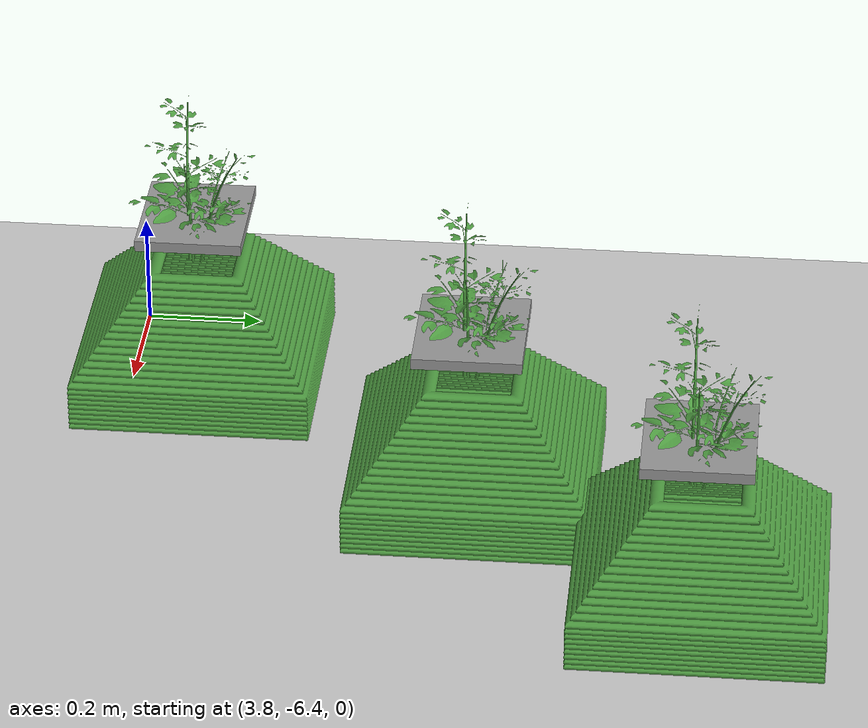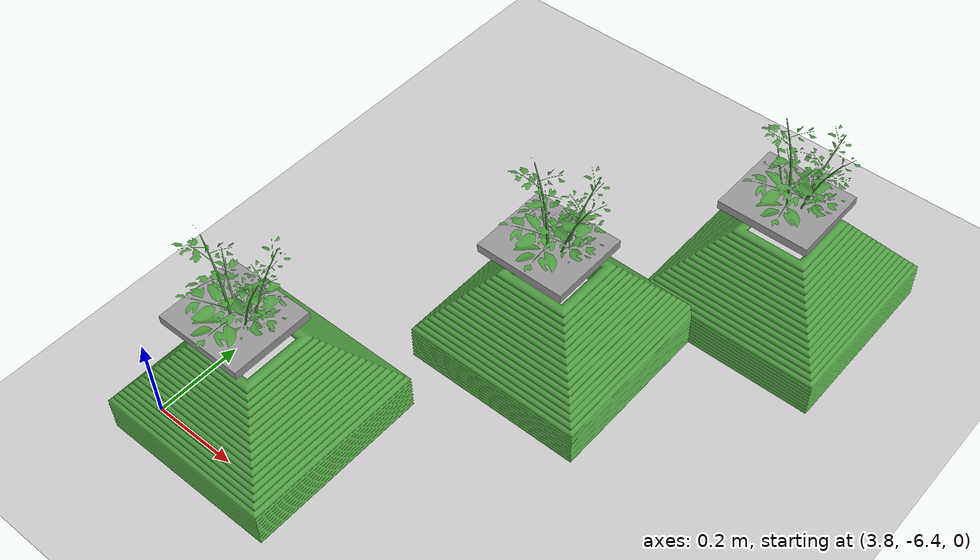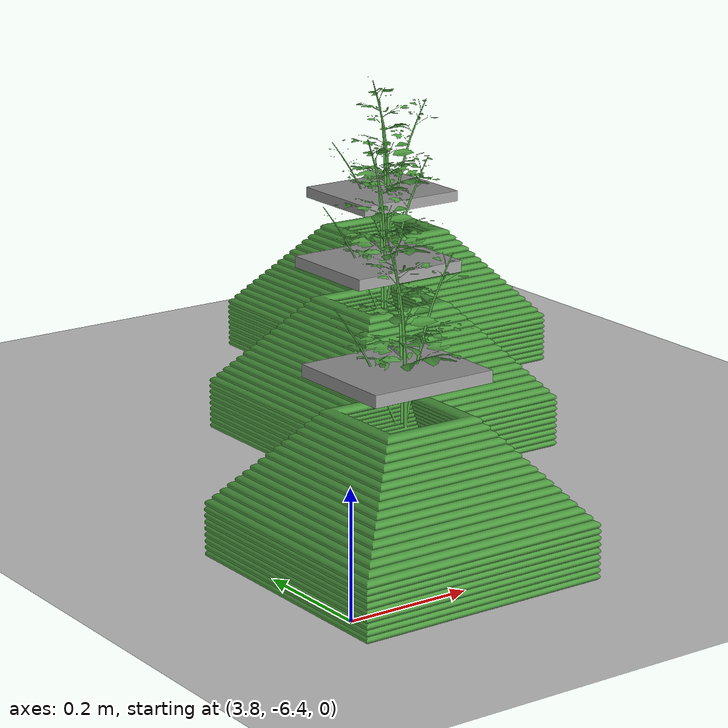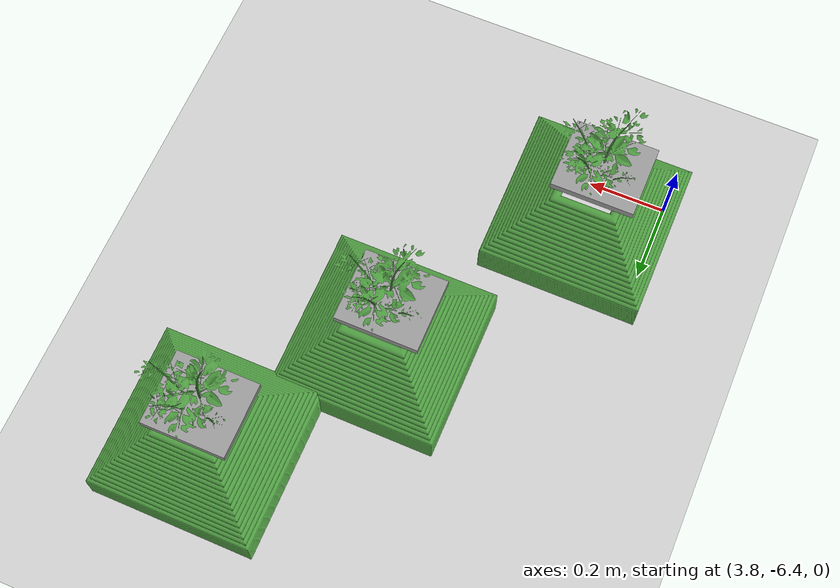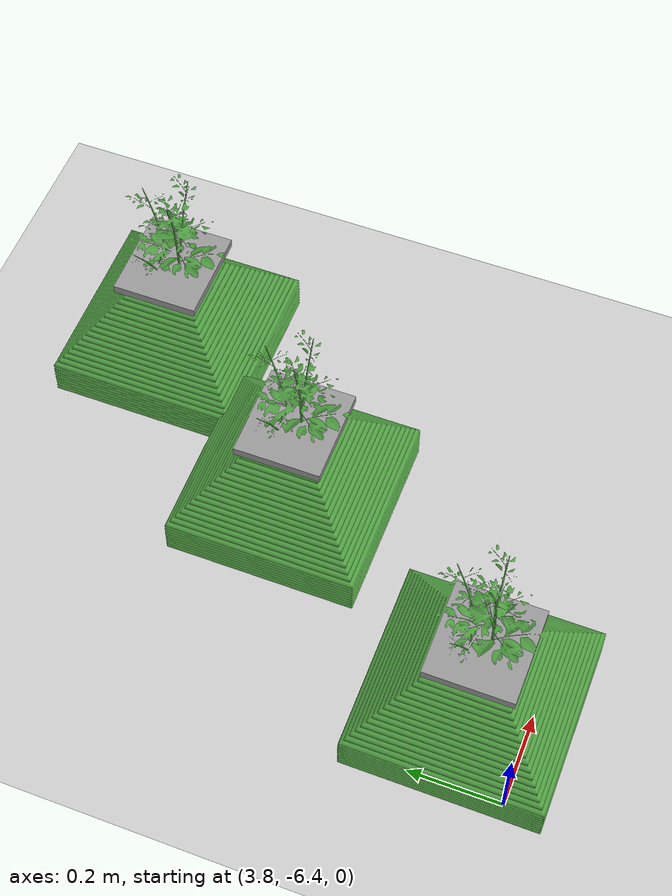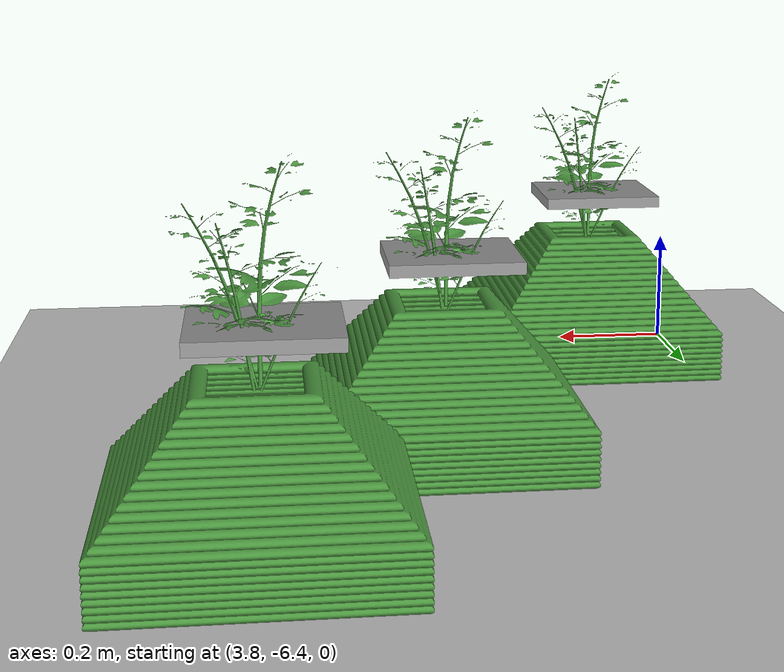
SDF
<sdf version="1.6">
 <world name="default">
  <model name="ground_plane">
   <static>1</static>
   <link name="link">
    <collision name="collision">
     <geometry><plane><normal>0 0 1</normal><size>100 100</size></plane></geometry>
     <surface><friction><ode><mu>100</mu><mu2>50</mu2></ode></friction></surface>
    </collision>
    <visual name="visual">
     <cast_shadows>0</cast_shadows>
     <geometry><plane><normal>0 0 1</normal><size>100 100</size></plane></geometry>
     <material>
      <script><uri>file://media/materials/scripts/gazebo.material</uri><name>Gazebo/Grey</name></script>
     </material>
    </visual>
   </link>
  </model>
  <model name="plant_122">
   <link name="link_0">
    <inertial>
     <mass>1</mass>
     <inertia>
      <ixx>0.0134051</ixx>
      <ixy>0</ixy>
      <ixz>0</ixz>
      <iyy>0.0134051</iyy>
      <iyz>0</iyz>
      <izz>0.0254102</izz>
     </inertia>
    </inertial>
    <gravity>0</gravity>
    <visual name="visual">
     <geometry><mesh><uri>model://square_pot/pot.stl</uri><scale>0.033 0.033 0.02</scale></mesh></geometry>
     <material>
      <lighting>1</lighting>
      <script><uri>file://media/materials/scripts/gazebo.material</uri><name>Gazebo/Grass</name></script>
      <ambient>0.3 0.3 0.3 1</ambient>
      <diffuse>0.7 0.7 0.7 1</diffuse>
      <specular>0.01 0.01 0.01 1</specular>
      <emissive>0 0 0 1</emissive>
      <shader type="vertex"><normal_map>__default__</normal_map></shader>
     </material>
    </visual>
    <collision name="collision">
     <pose>0 0 0.25 0 -0 0</pose>
     <geometry><box><size>0.4 0.4 0.4</size></box></geometry>
     <surface>
      <friction>
       <ode><mu>1</mu><mu2>1</mu2><fdir1>0 0 0</fdir1><slip1>0</slip1><slip2>0</slip2></ode>
       <torsional>
        <coefficient>1</coefficient>
        <patch_radius>0</patch_radius>
        <surface_radius>0</surface_radius>
        <use_patch_radius>1</use_patch_radius>
        <ode><slip>0</slip></ode>
       </torsional>
      </friction>
      <bounce><restitution_coefficient>0</restitution_coefficient><threshold>1e+06</threshold></bounce>
      <contact>
       <collide_without_contact>1</collide_without_contact>
       <collide_without_contact_bitmask>1</collide_without_contact_bitmask>
       <collide_bitmask>1</collide_bitmask>
       <ode>
        <soft_cfm>0</soft_cfm>
        <soft_erp>0.2</soft_erp>
        <kp>1e+13</kp>
        <kd>1</kd>
        <max_vel>0.01</max_vel>
        <min_depth>0</min_depth>
       </ode>
       <bullet>
        <split_impulse>1</split_impulse>
        <split_impulse_penetration_threshold>-0.01</split_impulse_penetration_threshold>
        <soft_cfm>0</soft_cfm>
        <soft_erp>0.2</soft_erp>
        <kp>1e+13</kp>
        <kd>1</kd>
       </bullet>
      </contact>
     </surface>
    </collision>
   </link>
   <link name="link_0_0">
    <pose>-0.011441 -0.008338 0.308474 0 -0 0</pose>
    <inertial>
     <mass>0.000736153</mass>
     <inertia>
      <ixx>2.11165e-06</ixx>
      <ixy>0</ixy>
      <ixz>0</ixz>
      <iyy>2.64382e-06</iyy>
      <iyz>0</iyz>
      <izz>4.70976e-06</izz>
     </inertia>
    </inertial>
    <visual name="visual">
     <geometry><box><size>0.206678 0.18452 0.019291</size></box></geometry>
     <material>
      <lighting>1</lighting>
      <script><uri>file://media/materials/scripts/gazebo.material</uri><name>Gazebo/Grey</name></script>
      <ambient>0.3 0.3 0.3 1</ambient>
      <diffuse>0.7 0.7 0.7 1</diffuse>
      <specular>0.01 0.01 0.01 1</specular>
      <emissive>0 0 0 1</emissive>
     </material>
    </visual>
    <collision name="collision">
     <geometry><box><size>0.206678 0.18452 0.019291</size></box></geometry>
     <surface>
      <friction>
       <ode><mu>1</mu><mu2>1</mu2><fdir1>0 0 0</fdir1><slip1>0</slip1><slip2>0</slip2></ode>
       <torsional>
        <coefficient>1</coefficient>
        <patch_radius>0</patch_radius>
        <surface_radius>0</surface_radius>
        <use_patch_radius>1</use_patch_radius>
        <ode><slip>0</slip></ode>
       </torsional>
      </friction>
      <bounce><restitution_coefficient>0</restitution_coefficient><threshold>1e+06</threshold></bounce>
      <contact>
       <collide_without_contact>0</collide_without_contact>
       <collide_without_contact_bitmask>1</collide_without_contact_bitmask>
       <collide_bitmask>1</collide_bitmask>
       <ode>
        <soft_cfm>0</soft_cfm>
        <soft_erp>0.2</soft_erp>
        <kp>1e+13</kp>
        <kd>1</kd>
        <max_vel>0.01</max_vel>
        <min_depth>0</min_depth>
       </ode>
       <bullet>
        <split_impulse>1</split_impulse>
        <split_impulse_penetration_threshold>-0.01</split_impulse_penetration_threshold>
        <soft_cfm>0</soft_cfm>
        <soft_erp>0.2</soft_erp>
        <kp>1e+13</kp>
        <kd>1</kd>
       </bullet>
      </contact>
     </surface>
    </collision>
   </link>
   <static>1</static>
   <pose>4.59414 -5.37225 0 0 -0 0</pose>
  </model>
  <model name="plant_123">
   <link name="link_0">
    <inertial>
     <mass>1</mass>
     <inertia>
      <ixx>0.0134051</ixx>
      <ixy>0</ixy>
      <ixz>0</ixz>
      <iyy>0.0134051</iyy>
      <iyz>0</iyz>
      <izz>0.0254102</izz>
     </inertia>
    </inertial>
    <gravity>0</gravity>
    <visual name="visual">
     <geometry><mesh><uri>model://square_pot/pot.stl</uri><scale>0.033 0.033 0.02</scale></mesh></geometry>
     <material>
      <lighting>1</lighting>
      <script><uri>file://media/materials/scripts/gazebo.material</uri><name>Gazebo/Grass</name></script>
      <ambient>0.3 0.3 0.3 1</ambient>
      <diffuse>0.7 0.7 0.7 1</diffuse>
      <specular>0.01 0.01 0.01 1</specular>
      <emissive>0 0 0 1</emissive>
      <shader type="vertex"><normal_map>__default__</normal_map></shader>
     </material>
    </visual>
    <collision name="collision">
     <pose>0 0 0.25 0 -0 0</pose>
     <geometry><box><size>0.4 0.4 0.4</size></box></geometry>
     <surface>
      <friction>
       <ode><mu>1</mu><mu2>1</mu2><fdir1>0 0 0</fdir1><slip1>0</slip1><slip2>0</slip2></ode>
       <torsional>
        <coefficient>1</coefficient>
        <patch_radius>0</patch_radius>
        <surface_radius>0</surface_radius>
        <use_patch_radius>1</use_patch_radius>
        <ode><slip>0</slip></ode>
       </torsional>
      </friction>
      <bounce><restitution_coefficient>0</restitution_coefficient><threshold>1e+06</threshold></bounce>
      <contact>
       <collide_without_contact>1</collide_without_contact>
       <collide_without_contact_bitmask>1</collide_without_contact_bitmask>
       <collide_bitmask>1</collide_bitmask>
       <ode>
        <soft_cfm>0</soft_cfm>
        <soft_erp>0.2</soft_erp>
        <kp>1e+13</kp>
        <kd>1</kd>
        <max_vel>0.01</max_vel>
        <min_depth>0</min_depth>
       </ode>
       <bullet>
        <split_impulse>1</split_impulse>
        <split_impulse_penetration_threshold>-0.01</split_impulse_penetration_threshold>
        <soft_cfm>0</soft_cfm>
        <soft_erp>0.2</soft_erp>
        <kp>1e+13</kp>
        <kd>1</kd>
       </bullet>
      </contact>
     </surface>
    </collision>
   </link>
   <link name="link_0_0">
    <pose>-0.011441 -0.008338 0.308474 0 -0 0</pose>
    <inertial>
     <mass>0.000736153</mass>
     <inertia>
      <ixx>2.11165e-06</ixx>
      <ixy>0</ixy>
      <ixz>0</ixz>
      <iyy>2.64382e-06</iyy>
      <iyz>0</iyz>
      <izz>4.70976e-06</izz>
     </inertia>
    </inertial>
    <visual name="visual">
     <geometry><box><size>0.206678 0.18452 0.019291</size></box></geometry>
     <material>
      <lighting>1</lighting>
      <script><uri>file://media/materials/scripts/gazebo.material</uri><name>Gazebo/Grey</name></script>
      <ambient>0.3 0.3 0.3 1</ambient>
      <diffuse>0.7 0.7 0.7 1</diffuse>
      <specular>0.01 0.01 0.01 1</specular>
      <emissive>0 0 0 1</emissive>
     </material>
    </visual>
    <collision name="collision">
     <geometry><box><size>0.206678 0.18452 0.019291</size></box></geometry>
     <surface>
      <friction>
       <ode><mu>1</mu><mu2>1</mu2><fdir1>0 0 0</fdir1><slip1>0</slip1><slip2>0</slip2></ode>
       <torsional>
        <coefficient>1</coefficient>
        <patch_radius>0</patch_radius>
        <surface_radius>0</surface_radius>
        <use_patch_radius>1</use_patch_radius>
        <ode><slip>0</slip></ode>
       </torsional>
      </friction>
      <bounce><restitution_coefficient>0</restitution_coefficient><threshold>1e+06</threshold></bounce>
      <contact>
       <collide_without_contact>0</collide_without_contact>
       <collide_without_contact_bitmask>1</collide_without_contact_bitmask>
       <collide_bitmask>1</collide_bitmask>
       <ode>
        <soft_cfm>0</soft_cfm>
        <soft_erp>0.2</soft_erp>
        <kp>1e+13</kp>
        <kd>1</kd>
        <max_vel>0.01</max_vel>
        <min_depth>0</min_depth>
       </ode>
       <bullet>
        <split_impulse>1</split_impulse>
        <split_impulse_penetration_threshold>-0.01</split_impulse_penetration_threshold>
        <soft_cfm>0</soft_cfm>
        <soft_erp>0.2</soft_erp>
        <kp>1e+13</kp>
        <kd>1</kd>
       </bullet>
      </contact>
     </surface>
    </collision>
   </link>
   <static>1</static>
   <pose>4.30481 -5.76585 0 0 -0 0</pose>
  </model>
  <model name="plant_124">
   <link name="link_0">
    <inertial>
     <mass>1</mass>
     <inertia>
      <ixx>0.0134051</ixx>
      <ixy>0</ixy>
      <ixz>0</ixz>
      <iyy>0.0134051</iyy>
      <iyz>0</iyz>
      <izz>0.0254102</izz>
     </inertia>
    </inertial>
    <gravity>0</gravity>
    <visual name="visual">
     <geometry><mesh><uri>model://square_pot/pot.stl</uri><scale>0.033 0.033 0.02</scale></mesh></geometry>
     <material>
      <lighting>1</lighting>
      <script><uri>file://media/materials/scripts/gazebo.material</uri><name>Gazebo/Grass</name></script>
      <ambient>0.3 0.3 0.3 1</ambient>
      <diffuse>0.7 0.7 0.7 1</diffuse>
      <specular>0.01 0.01 0.01 1</specular>
      <emissive>0 0 0 1</emissive>
      <shader type="vertex"><normal_map>__default__</normal_map></shader>
     </material>
    </visual>
    <collision name="collision">
     <pose>0 0 0.25 0 -0 0</pose>
     <geometry><box><size>0.4 0.4 0.4</size></box></geometry>
     <surface>
      <friction>
       <ode><mu>1</mu><mu2>1</mu2><fdir1>0 0 0</fdir1><slip1>0</slip1><slip2>0</slip2></ode>
       <torsional>
        <coefficient>1</coefficient>
        <patch_radius>0</patch_radius>
        <surface_radius>0</surface_radius>
        <use_patch_radius>1</use_patch_radius>
        <ode><slip>0</slip></ode>
       </torsional>
      </friction>
      <bounce><restitution_coefficient>0</restitution_coefficient><threshold>1e+06</threshold></bounce>
      <contact>
       <collide_without_contact>1</collide_without_contact>
       <collide_without_contact_bitmask>1</collide_without_contact_bitmask>
       <collide_bitmask>1</collide_bitmask>
       <ode>
        <soft_cfm>0</soft_cfm>
        <soft_erp>0.2</soft_erp>
        <kp>1e+13</kp>
        <kd>1</kd>
        <max_vel>0.01</max_vel>
        <min_depth>0</min_depth>
       </ode>
       <bullet>
        <split_impulse>1</split_impulse>
        <split_impulse_penetration_threshold>-0.01</split_impulse_penetration_threshold>
        <soft_cfm>0</soft_cfm>
        <soft_erp>0.2</soft_erp>
        <kp>1e+13</kp>
        <kd>1</kd>
       </bullet>
      </contact>
     </surface>
    </collision>
   </link>
   <link name="link_0_0">
    <pose>-0.011441 -0.008338 0.308474 0 -0 0</pose>
    <inertial>
     <mass>0.000736153</mass>
     <inertia>
      <ixx>2.11165e-06</ixx>
      <ixy>0</ixy>
      <ixz>0</ixz>
      <iyy>2.64382e-06</iyy>
      <iyz>0</iyz>
      <izz>4.70976e-06</izz>
     </inertia>
    </inertial>
    <visual name="visual">
     <geometry><box><size>0.206678 0.18452 0.019291</size></box></geometry>
     <material>
      <lighting>1</lighting>
      <script><uri>file://media/materials/scripts/gazebo.material</uri><name>Gazebo/Grey</name></script>
      <ambient>0.3 0.3 0.3 1</ambient>
      <diffuse>0.7 0.7 0.7 1</diffuse>
      <specular>0.01 0.01 0.01 1</specular>
      <emissive>0 0 0 1</emissive>
     </material>
    </visual>
    <collision name="collision">
     <geometry><box><size>0.206678 0.18452 0.019291</size></box></geometry>
     <surface>
      <friction>
       <ode><mu>1</mu><mu2>1</mu2><fdir1>0 0 0</fdir1><slip1>0</slip1><slip2>0</slip2></ode>
       <torsional>
        <coefficient>1</coefficient>
        <patch_radius>0</patch_radius>
        <surface_radius>0</surface_radius>
        <use_patch_radius>1</use_patch_radius>
        <ode><slip>0</slip></ode>
       </torsional>
      </friction>
      <bounce><restitution_coefficient>0</restitution_coefficient><threshold>1e+06</threshold></bounce>
      <contact>
       <collide_without_contact>0</collide_without_contact>
       <collide_without_contact_bitmask>1</collide_without_contact_bitmask>
       <collide_bitmask>1</collide_bitmask>
       <ode>
        <soft_cfm>0</soft_cfm>
        <soft_erp>0.2</soft_erp>
        <kp>1e+13</kp>
        <kd>1</kd>
        <max_vel>0.01</max_vel>
        <min_depth>0</min_depth>
       </ode>
       <bullet>
        <split_impulse>1</split_impulse>
        <split_impulse_penetration_threshold>-0.01</split_impulse_penetration_threshold>
        <soft_cfm>0</soft_cfm>
        <soft_erp>0.2</soft_erp>
        <kp>1e+13</kp>
        <kd>1</kd>
       </bullet>
      </contact>
     </surface>
    </collision>
   </link>
   <static>1</static>
   <pose>3.97344 -6.27706 0 0 -0 0</pose>
  </model>
 </world>
</sdf>
